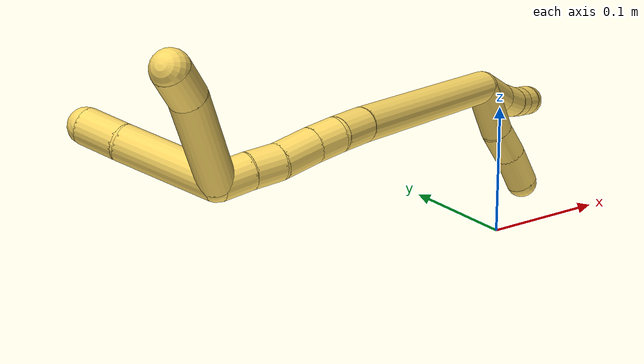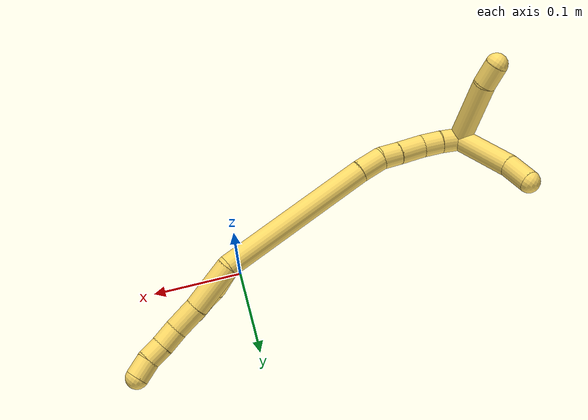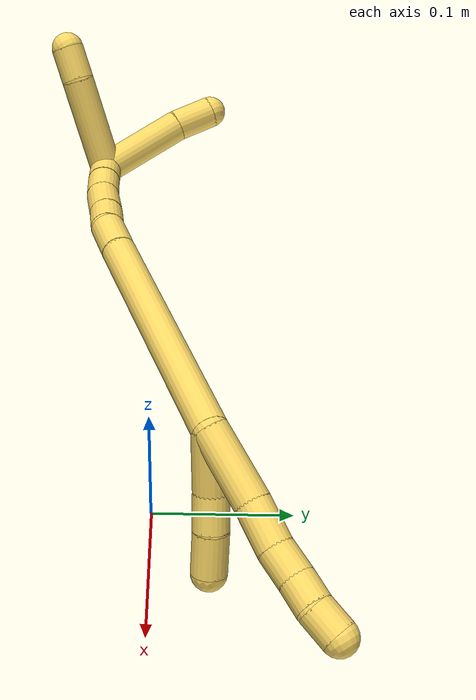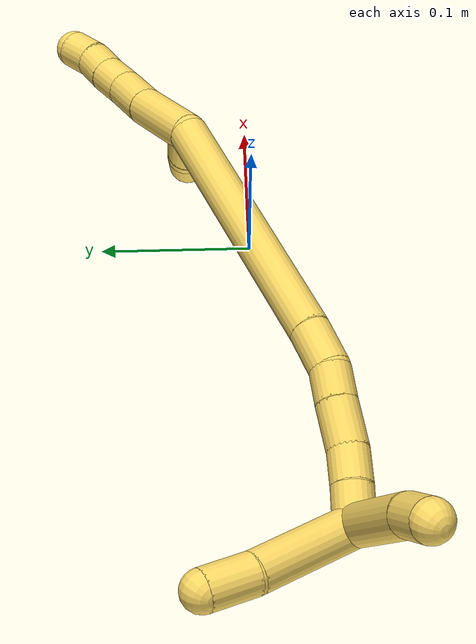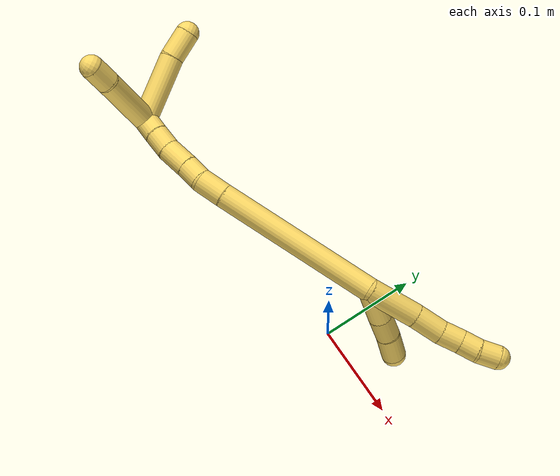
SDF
<sdf version="1.7">
 <world name="default">
  <model name="5">
   <static>0</static>
   <link name="5">
    <collision name="collision-cylinder-e_1_2_8">
     <pose>0.001091 0.000891 -0.027026 -3.10862 0.04031 -1.77037</pose>
     <geometry><cylinder><radius>0.0125</radius><length>0.054126</length></cylinder></geometry>
     <surface>
      <friction><ode><mu>1.16</mu><mu2>1.16</mu2><slip1>0</slip1><slip2>0</slip2></ode></friction>
      <contact><ode><kp>1e+06</kp><kd>1</kd><max_vel>0</max_vel><min_depth>0.001</min_depth></ode></contact>
     </surface>
    </collision>
    <visual name="visual-cylinder-e_1_2_8">
     <pose>0.001091 0.000891 -0.027026 -3.10862 0.04031 -1.77037</pose>
     <geometry><cylinder><radius>0.0125</radius><length>0.054126</length></cylinder></geometry>
     <material><ambient>1 0.858824 0.4 1</ambient></material>
    </visual>
    <collision name="collision-cylinder-e_2_8_9">
     <pose>0.004293 0.002547 -0.069614 -3.09255 0.134702 -2.44415</pose>
     <geometry><cylinder><radius>0.0125</radius><length>0.031445</length></cylinder></geometry>
     <surface>
      <friction><ode><mu>1.16</mu><mu2>1.16</mu2><slip1>0</slip1><slip2>0</slip2></ode></friction>
      <contact><ode><kp>1e+06</kp><kd>1</kd><max_vel>0</max_vel><min_depth>0.001</min_depth></ode></contact>
     </surface>
    </collision>
    <visual name="visual-cylinder-e_2_8_9">
     <pose>0.004293 0.002547 -0.069614 -3.09255 0.134702 -2.44415</pose>
     <geometry><cylinder><radius>0.0125</radius><length>0.031445</length></cylinder></geometry>
     <material><ambient>1 0.858824 0.4 1</ambient></material>
    </visual>
    <collision name="collision-cylinder-e_3_9_10">
     <pose>0.007301 0.005452 -0.09615 -2.94884 0.080026 -0.785225</pose>
     <geometry><cylinder><radius>0.0125</radius><length>0.022436</length></cylinder></geometry>
     <surface>
      <friction><ode><mu>1.16</mu><mu2>1.16</mu2><slip1>0</slip1><slip2>0</slip2></ode></friction>
      <contact><ode><kp>1e+06</kp><kd>1</kd><max_vel>0</max_vel><min_depth>0.001</min_depth></ode></contact>
     </surface>
    </collision>
    <visual name="visual-cylinder-e_3_9_10">
     <pose>0.007301 0.005452 -0.09615 -2.94884 0.080026 -0.785225</pose>
     <geometry><cylinder><radius>0.0125</radius><length>0.022436</length></cylinder></geometry>
     <material><ambient>1 0.858824 0.4 1</ambient></material>
    </visual>
    <collision name="collision-cylinder-e_4_10_11">
     <pose>0.009816 0.009809 -0.116949 -2.91993 0.159339 -1.24462</pose>
     <geometry><cylinder><radius>0.0125</radius><length>0.0204</length></cylinder></geometry>
     <surface>
      <friction><ode><mu>1.16</mu><mu2>1.16</mu2><slip1>0</slip1><slip2>0</slip2></ode></friction>
      <contact><ode><kp>1e+06</kp><kd>1</kd><max_vel>0</max_vel><min_depth>0.001</min_depth></ode></contact>
     </surface>
    </collision>
    <visual name="visual-cylinder-e_4_10_11">
     <pose>0.009816 0.009809 -0.116949 -2.91993 0.159339 -1.24462</pose>
     <geometry><cylinder><radius>0.0125</radius><length>0.0204</length></cylinder></geometry>
     <material><ambient>1 0.858824 0.4 1</ambient></material>
    </visual>
    <collision name="collision-cylinder-e_5_11_6">
     <pose>0.010914 0.014332 -0.137308 -2.92578 -0.048217 0.438047</pose>
     <geometry><cylinder><radius>0.0125</radius><length>0.021593</length></cylinder></geometry>
     <surface>
      <friction><ode><mu>1.16</mu><mu2>1.16</mu2><slip1>0</slip1><slip2>0</slip2></ode></friction>
      <contact><ode><kp>1e+06</kp><kd>1</kd><max_vel>0</max_vel><min_depth>0.001</min_depth></ode></contact>
     </surface>
    </collision>
    <visual name="visual-cylinder-e_5_11_6">
     <pose>0.010914 0.014332 -0.137308 -2.92578 -0.048217 0.438047</pose>
     <geometry><cylinder><radius>0.0125</radius><length>0.021593</length></cylinder></geometry>
     <material><ambient>1 0.858824 0.4 1</ambient></material>
    </visual>
    <collision name="collision-cylinder-e_1_2_12">
     <pose>-0.000695 -0.015049 -0.015717 2.3779 -0.031937 -0.079498</pose>
     <geometry><cylinder><radius>0.0125</radius><length>0.043541</length></cylinder></geometry>
     <surface>
      <friction><ode><mu>1.16</mu><mu2>1.16</mu2><slip1>0</slip1><slip2>0</slip2></ode></friction>
      <contact><ode><kp>1e+06</kp><kd>1</kd><max_vel>0</max_vel><min_depth>0.001</min_depth></ode></contact>
     </surface>
    </collision>
    <visual name="visual-cylinder-e_1_2_12">
     <pose>-0.000695 -0.015049 -0.015717 2.3779 -0.031937 -0.079498</pose>
     <geometry><cylinder><radius>0.0125</radius><length>0.043541</length></cylinder></geometry>
     <material><ambient>1 0.858824 0.4 1</ambient></material>
    </visual>
    <collision name="collision-cylinder-e_2_12_13">
     <pose>-3.2e-05 -0.038257 -0.041711 2.4706 0.103171 0.294018</pose>
     <geometry><cylinder><radius>0.0125</radius><length>0.026385</length></cylinder></geometry>
     <surface>
      <friction><ode><mu>1.16</mu><mu2>1.16</mu2><slip1>0</slip1><slip2>0</slip2></ode></friction>
      <contact><ode><kp>1e+06</kp><kd>1</kd><max_vel>0</max_vel><min_depth>0.001</min_depth></ode></contact>
     </surface>
    </collision>
    <visual name="visual-cylinder-e_2_12_13">
     <pose>-3.2e-05 -0.038257 -0.041711 2.4706 0.103171 0.294018</pose>
     <geometry><cylinder><radius>0.0125</radius><length>0.026385</length></cylinder></geometry>
     <material><ambient>1 0.858824 0.4 1</ambient></material>
    </visual>
    <collision name="collision-cylinder-e_3_13_5">
     <pose>0.00201 -0.056973 -0.062673 2.36221 0.045448 0.110568</pose>
     <geometry><cylinder><radius>0.0125</radius><length>0.030074</length></cylinder></geometry>
     <surface>
      <friction><ode><mu>1.16</mu><mu2>1.16</mu2><slip1>0</slip1><slip2>0</slip2></ode></friction>
      <contact><ode><kp>1e+06</kp><kd>1</kd><max_vel>0</max_vel><min_depth>0.001</min_depth></ode></contact>
     </surface>
    </collision>
    <visual name="visual-cylinder-e_3_13_5">
     <pose>0.00201 -0.056973 -0.062673 2.36221 0.045448 0.110568</pose>
     <geometry><cylinder><radius>0.0125</radius><length>0.030074</length></cylinder></geometry>
     <material><ambient>1 0.858824 0.4 1</ambient></material>
    </visual>
    <collision name="collision-cylinder-e_1_2_14">
     <pose>-0.028142 -0.023482 0.080119 0.285109 -0.325118 -0.04707</pose>
     <geometry><cylinder><radius>0.0125</radius><length>0.17621</length></cylinder></geometry>
     <surface>
      <friction><ode><mu>1.16</mu><mu2>1.16</mu2><slip1>0</slip1><slip2>0</slip2></ode></friction>
      <contact><ode><kp>1e+06</kp><kd>1</kd><max_vel>0</max_vel><min_depth>0.001</min_depth></ode></contact>
     </surface>
    </collision>
    <visual name="visual-cylinder-e_1_2_14">
     <pose>-0.028142 -0.023482 0.080119 0.285109 -0.325118 -0.04707</pose>
     <geometry><cylinder><radius>0.0125</radius><length>0.17621</length></cylinder></geometry>
     <material><ambient>1 0.858824 0.4 1</ambient></material>
    </visual>
    <collision name="collision-cylinder-e_2_14_15">
     <pose>-0.061682 -0.051287 0.172801 0.331384 -0.385862 -0.065315</pose>
     <geometry><cylinder><radius>0.0125</radius><length>0.028681</length></cylinder></geometry>
     <surface>
      <friction><ode><mu>1.16</mu><mu2>1.16</mu2><slip1>0</slip1><slip2>0</slip2></ode></friction>
      <contact><ode><kp>1e+06</kp><kd>1</kd><max_vel>0</max_vel><min_depth>0.001</min_depth></ode></contact>
     </surface>
    </collision>
    <visual name="visual-cylinder-e_2_14_15">
     <pose>-0.061682 -0.051287 0.172801 0.331384 -0.385862 -0.065315</pose>
     <geometry><cylinder><radius>0.0125</radius><length>0.028681</length></cylinder></geometry>
     <material><ambient>1 0.858824 0.4 1</ambient></material>
    </visual>
    <collision name="collision-cylinder-e_3_15_16">
     <pose>-0.073563 -0.059 0.193198 0.40837 -0.649594 -0.139225</pose>
     <geometry><cylinder><radius>0.0125</radius><length>0.021437</length></cylinder></geometry>
     <surface>
      <friction><ode><mu>1.16</mu><mu2>1.16</mu2><slip1>0</slip1><slip2>0</slip2></ode></friction>
      <contact><ode><kp>1e+06</kp><kd>1</kd><max_vel>0</max_vel><min_depth>0.001</min_depth></ode></contact>
     </surface>
    </collision>
    <visual name="visual-cylinder-e_3_15_16">
     <pose>-0.073563 -0.059 0.193198 0.40837 -0.649594 -0.139225</pose>
     <geometry><cylinder><radius>0.0125</radius><length>0.021437</length></cylinder></geometry>
     <material><ambient>1 0.858824 0.4 1</ambient></material>
    </visual>
    <collision name="collision-cylinder-e_4_16_17">
     <pose>-0.088417 -0.067587 0.211711 0.452954 -0.613993 -0.145843</pose>
     <geometry><cylinder><radius>0.0125</radius><length>0.029061</length></cylinder></geometry>
     <surface>
      <friction><ode><mu>1.16</mu><mu2>1.16</mu2><slip1>0</slip1><slip2>0</slip2></ode></friction>
      <contact><ode><kp>1e+06</kp><kd>1</kd><max_vel>0</max_vel><min_depth>0.001</min_depth></ode></contact>
     </surface>
    </collision>
    <visual name="visual-cylinder-e_4_16_17">
     <pose>-0.088417 -0.067587 0.211711 0.452954 -0.613993 -0.145843</pose>
     <geometry><cylinder><radius>0.0125</radius><length>0.029061</length></cylinder></geometry>
     <material><ambient>1 0.858824 0.4 1</ambient></material>
    </visual>
    <collision name="collision-cylinder-e_5_17_18">
     <pose>-0.104022 -0.075232 0.230369 0.297721 -0.714099 -0.111773</pose>
     <geometry><cylinder><radius>0.0125</radius><length>0.022089</length></cylinder></geometry>
     <surface>
      <friction><ode><mu>1.16</mu><mu2>1.16</mu2><slip1>0</slip1><slip2>0</slip2></ode></friction>
      <contact><ode><kp>1e+06</kp><kd>1</kd><max_vel>0</max_vel><min_depth>0.001</min_depth></ode></contact>
     </surface>
    </collision>
    <visual name="visual-cylinder-e_5_17_18">
     <pose>-0.104022 -0.075232 0.230369 0.297721 -0.714099 -0.111773</pose>
     <geometry><cylinder><radius>0.0125</radius><length>0.022089</length></cylinder></geometry>
     <material><ambient>1 0.858824 0.4 1</ambient></material>
    </visual>
    <collision name="collision-cylinder-e_6_18_1">
     <pose>-0.119114 -0.080661 0.245843 0.378452 -0.772356 -0.155426</pose>
     <geometry><cylinder><radius>0.0125</radius><length>0.022522</length></cylinder></geometry>
     <surface>
      <friction><ode><mu>1.16</mu><mu2>1.16</mu2><slip1>0</slip1><slip2>0</slip2></ode></friction>
      <contact><ode><kp>1e+06</kp><kd>1</kd><max_vel>0</max_vel><min_depth>0.001</min_depth></ode></contact>
     </surface>
    </collision>
    <visual name="visual-cylinder-e_6_18_1">
     <pose>-0.119114 -0.080661 0.245843 0.378452 -0.772356 -0.155426</pose>
     <geometry><cylinder><radius>0.0125</radius><length>0.022522</length></cylinder></geometry>
     <material><ambient>1 0.858824 0.4 1</ambient></material>
    </visual>
    <collision name="collision-cylinder-e_1_1_19">
     <pose>-0.155557 -0.064031 0.25607 -1.43237 -0.965019 0.855482</pose>
     <geometry><cylinder><radius>0.0125</radius><length>0.069545</length></cylinder></geometry>
     <surface>
      <friction><ode><mu>1.16</mu><mu2>1.16</mu2><slip1>0</slip1><slip2>0</slip2></ode></friction>
      <contact><ode><kp>1e+06</kp><kd>1</kd><max_vel>0</max_vel><min_depth>0.001</min_depth></ode></contact>
     </surface>
    </collision>
    <visual name="visual-cylinder-e_1_1_19">
     <pose>-0.155557 -0.064031 0.25607 -1.43237 -0.965019 0.855482</pose>
     <geometry><cylinder><radius>0.0125</radius><length>0.069545</length></cylinder></geometry>
     <material><ambient>1 0.858824 0.4 1</ambient></material>
    </visual>
    <collision name="collision-cylinder-e_2_19_4">
     <pose>-0.196576 -0.035716 0.257576 -1.71073 -0.955362 1.07449</pose>
     <geometry><cylinder><radius>0.0125</radius><length>0.030455</length></cylinder></geometry>
     <surface>
      <friction><ode><mu>1.16</mu><mu2>1.16</mu2><slip1>0</slip1><slip2>0</slip2></ode></friction>
      <contact><ode><kp>1e+06</kp><kd>1</kd><max_vel>0</max_vel><min_depth>0.001</min_depth></ode></contact>
     </surface>
    </collision>
    <visual name="visual-cylinder-e_2_19_4">
     <pose>-0.196576 -0.035716 0.257576 -1.71073 -0.955362 1.07449</pose>
     <geometry><cylinder><radius>0.0125</radius><length>0.030455</length></cylinder></geometry>
     <material><ambient>1 0.858824 0.4 1</ambient></material>
    </visual>
    <collision name="collision-cylinder-e_1_1_20">
     <pose>-0.119059 -0.064068 0.283702 -0.572584 0.215638 -0.063705</pose>
     <geometry><cylinder><radius>0.0125</radius><length>0.073966</length></cylinder></geometry>
     <surface>
      <friction><ode><mu>1.16</mu><mu2>1.16</mu2><slip1>0</slip1><slip2>0</slip2></ode></friction>
      <contact><ode><kp>1e+06</kp><kd>1</kd><max_vel>0</max_vel><min_depth>0.001</min_depth></ode></contact>
     </surface>
    </collision>
    <visual name="visual-cylinder-e_1_1_20">
     <pose>-0.119059 -0.064068 0.283702 -0.572584 0.215638 -0.063705</pose>
     <geometry><cylinder><radius>0.0125</radius><length>0.073966</length></cylinder></geometry>
     <material><ambient>1 0.858824 0.4 1</ambient></material>
    </visual>
    <collision name="collision-cylinder-e_2_20_3">
     <pose>-0.109928 -0.039144 0.325871 -0.425542 0.09369 -0.020255</pose>
     <geometry><cylinder><radius>0.0125</radius><length>0.026034</length></cylinder></geometry>
     <surface>
      <friction><ode><mu>1.16</mu><mu2>1.16</mu2><slip1>0</slip1><slip2>0</slip2></ode></friction>
      <contact><ode><kp>1e+06</kp><kd>1</kd><max_vel>0</max_vel><min_depth>0.001</min_depth></ode></contact>
     </surface>
    </collision>
    <visual name="visual-cylinder-e_2_20_3">
     <pose>-0.109928 -0.039144 0.325871 -0.425542 0.09369 -0.020255</pose>
     <geometry><cylinder><radius>0.0125</radius><length>0.026034</length></cylinder></geometry>
     <material><ambient>1 0.858824 0.4 1</ambient></material>
    </visual>
    <collision name="collision-sphere-3">
     <pose>-0.10871 -0.033794 0.337675 0 -0 0</pose>
     <geometry><sphere><radius>0.0125</radius></sphere></geometry>
     <surface>
      <friction><ode><mu>1.16</mu><mu2>1.16</mu2><slip1>0</slip1><slip2>0</slip2></ode></friction>
      <contact><ode><kp>1e+06</kp><kd>1</kd><max_vel>0</max_vel><min_depth>0.001</min_depth></ode></contact>
     </surface>
    </collision>
    <visual name="visual-sphere-3">
     <pose>-0.10871 -0.033794 0.337675 0 -0 0</pose>
     <geometry><sphere><radius>0.0125</radius></sphere></geometry>
     <material><ambient>1 0.858824 0.4 1</ambient></material>
    </visual>
    <collision name="collision-sphere-20">
     <pose>-0.111146 -0.044494 0.314067 0 -0 0</pose>
     <geometry><sphere><radius>0.0125</radius></sphere></geometry>
     <surface>
      <friction><ode><mu>1.16</mu><mu2>1.16</mu2><slip1>0</slip1><slip2>0</slip2></ode></friction>
      <contact><ode><kp>1e+06</kp><kd>1</kd><max_vel>0</max_vel><min_depth>0.001</min_depth></ode></contact>
     </surface>
    </collision>
    <visual name="visual-sphere-20">
     <pose>-0.111146 -0.044494 0.314067 0 -0 0</pose>
     <geometry><sphere><radius>0.0125</radius></sphere></geometry>
     <material><ambient>1 0.858824 0.4 1</ambient></material>
    </visual>
    <collision name="collision-sphere-4">
     <pose>-0.20901 -0.027011 0.25635 0 -0 0</pose>
     <geometry><sphere><radius>0.0125</radius></sphere></geometry>
     <surface>
      <friction><ode><mu>1.16</mu><mu2>1.16</mu2><slip1>0</slip1><slip2>0</slip2></ode></friction>
      <contact><ode><kp>1e+06</kp><kd>1</kd><max_vel>0</max_vel><min_depth>0.001</min_depth></ode></contact>
     </surface>
    </collision>
    <visual name="visual-sphere-4">
     <pose>-0.20901 -0.027011 0.25635 0 -0 0</pose>
     <geometry><sphere><radius>0.0125</radius></sphere></geometry>
     <material><ambient>1 0.858824 0.4 1</ambient></material>
    </visual>
    <collision name="collision-sphere-6">
     <pose>0.010394 0.016641 -0.147842 0 -0 0</pose>
     <geometry><sphere><radius>0.0125</radius></sphere></geometry>
     <surface>
      <friction><ode><mu>1.16</mu><mu2>1.16</mu2><slip1>0</slip1><slip2>0</slip2></ode></friction>
      <contact><ode><kp>1e+06</kp><kd>1</kd><max_vel>0</max_vel><min_depth>0.001</min_depth></ode></contact>
     </surface>
    </collision>
    <visual name="visual-sphere-6">
     <pose>0.010394 0.016641 -0.147842 0 -0 0</pose>
     <geometry><sphere><radius>0.0125</radius></sphere></geometry>
     <material><ambient>1 0.858824 0.4 1</ambient></material>
    </visual>
    <collision name="collision-sphere-11">
     <pose>0.011434 0.012023 -0.126774 0 -0 0</pose>
     <geometry><sphere><radius>0.0125</radius></sphere></geometry>
     <surface>
      <friction><ode><mu>1.16</mu><mu2>1.16</mu2><slip1>0</slip1><slip2>0</slip2></ode></friction>
      <contact><ode><kp>1e+06</kp><kd>1</kd><max_vel>0</max_vel><min_depth>0.001</min_depth></ode></contact>
     </surface>
    </collision>
    <visual name="visual-sphere-11">
     <pose>0.011434 0.012023 -0.126774 0 -0 0</pose>
     <geometry><sphere><radius>0.0125</radius></sphere></geometry>
     <material><ambient>1 0.858824 0.4 1</ambient></material>
    </visual>
    <collision name="collision-sphere-10">
     <pose>0.008198 0.007595 -0.107125 0 -0 0</pose>
     <geometry><sphere><radius>0.0125</radius></sphere></geometry>
     <surface>
      <friction><ode><mu>1.16</mu><mu2>1.16</mu2><slip1>0</slip1><slip2>0</slip2></ode></friction>
      <contact><ode><kp>1e+06</kp><kd>1</kd><max_vel>0</max_vel><min_depth>0.001</min_depth></ode></contact>
     </surface>
    </collision>
    <visual name="visual-sphere-10">
     <pose>0.008198 0.007595 -0.107125 0 -0 0</pose>
     <geometry><sphere><radius>0.0125</radius></sphere></geometry>
     <material><ambient>1 0.858824 0.4 1</ambient></material>
    </visual>
    <collision name="collision-sphere-9">
     <pose>0.006404 0.00331 -0.085175 0 -0 0</pose>
     <geometry><sphere><radius>0.0125</radius></sphere></geometry>
     <surface>
      <friction><ode><mu>1.16</mu><mu2>1.16</mu2><slip1>0</slip1><slip2>0</slip2></ode></friction>
      <contact><ode><kp>1e+06</kp><kd>1</kd><max_vel>0</max_vel><min_depth>0.001</min_depth></ode></contact>
     </surface>
    </collision>
    <visual name="visual-sphere-9">
     <pose>0.006404 0.00331 -0.085175 0 -0 0</pose>
     <geometry><sphere><radius>0.0125</radius></sphere></geometry>
     <material><ambient>1 0.858824 0.4 1</ambient></material>
    </visual>
    <collision name="collision-sphere-2">
     <geometry><sphere><radius>0.0125</radius></sphere></geometry>
     <surface>
      <friction><ode><mu>1.16</mu><mu2>1.16</mu2><slip1>0</slip1><slip2>0</slip2></ode></friction>
      <contact><ode><kp>1e+06</kp><kd>1</kd><max_vel>0</max_vel><min_depth>0.001</min_depth></ode></contact>
     </surface>
    </collision>
    <visual name="visual-sphere-2">
     <geometry><sphere><radius>0.0125</radius></sphere></geometry>
     <material><ambient>1 0.858824 0.4 1</ambient></material>
    </visual>
    <collision name="collision-sphere-19">
     <pose>-0.184142 -0.044421 0.258802 0 -0 0</pose>
     <geometry><sphere><radius>0.0125</radius></sphere></geometry>
     <surface>
      <friction><ode><mu>1.16</mu><mu2>1.16</mu2><slip1>0</slip1><slip2>0</slip2></ode></friction>
      <contact><ode><kp>1e+06</kp><kd>1</kd><max_vel>0</max_vel><min_depth>0.001</min_depth></ode></contact>
     </surface>
    </collision>
    <visual name="visual-sphere-19">
     <pose>-0.184142 -0.044421 0.258802 0 -0 0</pose>
     <geometry><sphere><radius>0.0125</radius></sphere></geometry>
     <material><ambient>1 0.858824 0.4 1</ambient></material>
    </visual>
    <collision name="collision-sphere-8">
     <pose>0.002181 0.001783 -0.054052 0 -0 0</pose>
     <geometry><sphere><radius>0.0125</radius></sphere></geometry>
     <surface>
      <friction><ode><mu>1.16</mu><mu2>1.16</mu2><slip1>0</slip1><slip2>0</slip2></ode></friction>
      <contact><ode><kp>1e+06</kp><kd>1</kd><max_vel>0</max_vel><min_depth>0.001</min_depth></ode></contact>
     </surface>
    </collision>
    <visual name="visual-sphere-8">
     <pose>0.002181 0.001783 -0.054052 0 -0 0</pose>
     <geometry><sphere><radius>0.0125</radius></sphere></geometry>
     <material><ambient>1 0.858824 0.4 1</ambient></material>
    </visual>
    <collision name="collision-sphere-12">
     <pose>-0.00139 -0.030098 -0.031433 0 -0 0</pose>
     <geometry><sphere><radius>0.0125</radius></sphere></geometry>
     <surface>
      <friction><ode><mu>1.16</mu><mu2>1.16</mu2><slip1>0</slip1><slip2>0</slip2></ode></friction>
      <contact><ode><kp>1e+06</kp><kd>1</kd><max_vel>0</max_vel><min_depth>0.001</min_depth></ode></contact>
     </surface>
    </collision>
    <visual name="visual-sphere-12">
     <pose>-0.00139 -0.030098 -0.031433 0 -0 0</pose>
     <geometry><sphere><radius>0.0125</radius></sphere></geometry>
     <material><ambient>1 0.858824 0.4 1</ambient></material>
    </visual>
    <collision name="collision-sphere-13">
     <pose>0.001327 -0.046416 -0.051988 0 -0 0</pose>
     <geometry><sphere><radius>0.0125</radius></sphere></geometry>
     <surface>
      <friction><ode><mu>1.16</mu><mu2>1.16</mu2><slip1>0</slip1><slip2>0</slip2></ode></friction>
      <contact><ode><kp>1e+06</kp><kd>1</kd><max_vel>0</max_vel><min_depth>0.001</min_depth></ode></contact>
     </surface>
    </collision>
    <visual name="visual-sphere-13">
     <pose>0.001327 -0.046416 -0.051988 0 -0 0</pose>
     <geometry><sphere><radius>0.0125</radius></sphere></geometry>
     <material><ambient>1 0.858824 0.4 1</ambient></material>
    </visual>
    <collision name="collision-sphere-5">
     <pose>0.002693 -0.067531 -0.073359 0 -0 0</pose>
     <geometry><sphere><radius>0.0125</radius></sphere></geometry>
     <surface>
      <friction><ode><mu>1.16</mu><mu2>1.16</mu2><slip1>0</slip1><slip2>0</slip2></ode></friction>
      <contact><ode><kp>1e+06</kp><kd>1</kd><max_vel>0</max_vel><min_depth>0.001</min_depth></ode></contact>
     </surface>
    </collision>
    <visual name="visual-sphere-5">
     <pose>0.002693 -0.067531 -0.073359 0 -0 0</pose>
     <geometry><sphere><radius>0.0125</radius></sphere></geometry>
     <material><ambient>1 0.858824 0.4 1</ambient></material>
    </visual>
    <collision name="collision-sphere-14">
     <pose>-0.056285 -0.046965 0.160238 0 -0 0</pose>
     <geometry><sphere><radius>0.0125</radius></sphere></geometry>
     <surface>
      <friction><ode><mu>1.16</mu><mu2>1.16</mu2><slip1>0</slip1><slip2>0</slip2></ode></friction>
      <contact><ode><kp>1e+06</kp><kd>1</kd><max_vel>0</max_vel><min_depth>0.001</min_depth></ode></contact>
     </surface>
    </collision>
    <visual name="visual-sphere-14">
     <pose>-0.056285 -0.046965 0.160238 0 -0 0</pose>
     <geometry><sphere><radius>0.0125</radius></sphere></geometry>
     <material><ambient>1 0.858824 0.4 1</ambient></material>
    </visual>
    <collision name="collision-sphere-15">
     <pose>-0.067079 -0.05561 0.185365 0 -0 0</pose>
     <geometry><sphere><radius>0.0125</radius></sphere></geometry>
     <surface>
      <friction><ode><mu>1.16</mu><mu2>1.16</mu2><slip1>0</slip1><slip2>0</slip2></ode></friction>
      <contact><ode><kp>1e+06</kp><kd>1</kd><max_vel>0</max_vel><min_depth>0.001</min_depth></ode></contact>
     </surface>
    </collision>
    <visual name="visual-sphere-15">
     <pose>-0.067079 -0.05561 0.185365 0 -0 0</pose>
     <geometry><sphere><radius>0.0125</radius></sphere></geometry>
     <material><ambient>1 0.858824 0.4 1</ambient></material>
    </visual>
    <collision name="collision-sphere-16">
     <pose>-0.080046 -0.062389 0.201032 0 -0 0</pose>
     <geometry><sphere><radius>0.0125</radius></sphere></geometry>
     <surface>
      <friction><ode><mu>1.16</mu><mu2>1.16</mu2><slip1>0</slip1><slip2>0</slip2></ode></friction>
      <contact><ode><kp>1e+06</kp><kd>1</kd><max_vel>0</max_vel><min_depth>0.001</min_depth></ode></contact>
     </surface>
    </collision>
    <visual name="visual-sphere-16">
     <pose>-0.080046 -0.062389 0.201032 0 -0 0</pose>
     <geometry><sphere><radius>0.0125</radius></sphere></geometry>
     <material><ambient>1 0.858824 0.4 1</ambient></material>
    </visual>
    <collision name="collision-sphere-17">
     <pose>-0.096789 -0.072784 0.22239 0 -0 0</pose>
     <geometry><sphere><radius>0.0125</radius></sphere></geometry>
     <surface>
      <friction><ode><mu>1.16</mu><mu2>1.16</mu2><slip1>0</slip1><slip2>0</slip2></ode></friction>
      <contact><ode><kp>1e+06</kp><kd>1</kd><max_vel>0</max_vel><min_depth>0.001</min_depth></ode></contact>
     </surface>
    </collision>
    <visual name="visual-sphere-17">
     <pose>-0.096789 -0.072784 0.22239 0 -0 0</pose>
     <geometry><sphere><radius>0.0125</radius></sphere></geometry>
     <material><ambient>1 0.858824 0.4 1</ambient></material>
    </visual>
    <collision name="collision-sphere-18">
     <pose>-0.111256 -0.077681 0.238348 0 -0 0</pose>
     <geometry><sphere><radius>0.0125</radius></sphere></geometry>
     <surface>
      <friction><ode><mu>1.16</mu><mu2>1.16</mu2><slip1>0</slip1><slip2>0</slip2></ode></friction>
      <contact><ode><kp>1e+06</kp><kd>1</kd><max_vel>0</max_vel><min_depth>0.001</min_depth></ode></contact>
     </surface>
    </collision>
    <visual name="visual-sphere-18">
     <pose>-0.111256 -0.077681 0.238348 0 -0 0</pose>
     <geometry><sphere><radius>0.0125</radius></sphere></geometry>
     <material><ambient>1 0.858824 0.4 1</ambient></material>
    </visual>
    <collision name="collision-sphere-1">
     <pose>-0.126972 -0.083641 0.253338 0 -0 0</pose>
     <geometry><sphere><radius>0.0125</radius></sphere></geometry>
     <surface>
      <friction><ode><mu>1.16</mu><mu2>1.16</mu2><slip1>0</slip1><slip2>0</slip2></ode></friction>
      <contact><ode><kp>1e+06</kp><kd>1</kd><max_vel>0</max_vel><min_depth>0.001</min_depth></ode></contact>
     </surface>
    </collision>
    <visual name="visual-sphere-1">
     <pose>-0.126972 -0.083641 0.253338 0 -0 0</pose>
     <geometry><sphere><radius>0.0125</radius></sphere></geometry>
     <material><ambient>1 0.858824 0.4 1</ambient></material>
    </visual>
    <inertial>
     <pose>-0.058007 -0.034977 0.107047 0 -0 0</pose>
     <mass>0.75</mass>
     <inertia>
      <ixx>0.000468</ixx>
      <ixy>0</ixy>
      <ixz>0</ixz>
      <iyy>0.000476</iyy>
      <iyz>0</iyz>
      <izz>0.000277</izz>
     </inertia>
    </inertial>
   </link>
   <pose>0.014739 0.039561 0.104823 1.09102 -0.311538 -0.805494</pose>
  </model>
 </world>
</sdf>
